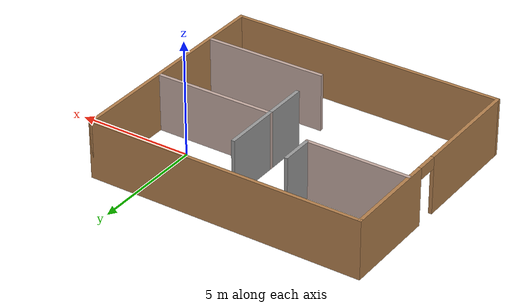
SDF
<?xml version='1.0'?>
<sdf version='1.6'>
  <model name='building'>
    <pose frame=''>-3.92953 -1.68851 0 0 -0 0</pose>
    <link name='Wall_0'>
      <collision name='Wall_0_Collision'>
        <geometry>
          <box>
            <size>12 0.15 2.5</size>
          </box>
        </geometry>
        <pose frame=''>0 0 1.25 0 -0 0</pose>
      </collision>
      <visual name='Wall_0_Visual'>
        <pose frame=''>0 0 1.25 0 -0 0</pose>
        <geometry>
          <box>
            <size>12 0.15 2.5</size>
          </box>
        </geometry>
        <material>
          <script>
            <uri>file://media/materials/scripts/gazebo.material</uri>
            <name>Gazebo/Wood</name>
          </script>
          <ambient>1 1 1 1</ambient>
        </material>
        <meta>
          <layer>0</layer>
        </meta>
      </visual>
      <pose frame=''>0 4.925 0 0 -0 0</pose>
    </link>
    <link name='Wall_1'>
      <collision name='Wall_1_Collision'>
        <geometry>
          <box>
            <size>10 0.15 2.5</size>
          </box>
        </geometry>
        <pose frame=''>0 0 1.25 0 -0 0</pose>
      </collision>
      <visual name='Wall_1_Visual'>
        <pose frame=''>0 0 1.25 0 -0 0</pose>
        <geometry>
          <box>
            <size>10 0.15 2.5</size>
          </box>
        </geometry>
        <material>
          <script>
            <uri>file://media/materials/scripts/gazebo.material</uri>
            <name>Gazebo/Wood</name>
          </script>
          <ambient>1 1 1 1</ambient>
        </material>
        <meta>
          <layer>0</layer>
        </meta>
      </visual>
      <pose frame=''>5.925 0 0 0 -0 -1.5708</pose>
    </link>
    <link name='Wall_12'>
      <collision name='Wall_12_Collision'>
        <geometry>
          <box>
            <size>5.25 0.15 2.5</size>
          </box>
        </geometry>
        <pose frame=''>0 0 1.25 0 -0 0</pose>
      </collision>
      <visual name='Wall_12_Visual'>
        <pose frame=''>0 0 1.25 0 -0 0</pose>
        <geometry>
          <box>
            <size>5.25 0.15 2.5</size>
          </box>
        </geometry>
        <material>
          <script>
            <uri>file://media/materials/scripts/gazebo.material</uri>
            <name>Gazebo/Grey</name>
          </script>
          <ambient>0.760784 0.662745 0.627451 1</ambient>
        </material>
        <meta>
          <layer>0</layer>
        </meta>
      </visual>
      <pose frame=''>3.22225 -2.71523 0 0 -0 0.007888</pose>
    </link>
    <link name='Wall_14'>
      <collision name='Wall_14_Collision'>
        <geometry>
          <box>
            <size>5.25 0.15 2.5</size>
          </box>
        </geometry>
        <pose frame=''>0 0 1.25 0 -0 0</pose>
      </collision>
      <visual name='Wall_14_Visual'>
        <pose frame=''>0 0 1.25 0 -0 0</pose>
        <geometry>
          <box>
            <size>5.25 0.15 2.5</size>
          </box>
        </geometry>
        <material>
          <script>
            <uri>file://media/materials/scripts/gazebo.material</uri>
            <name>Gazebo/Grey</name>
          </script>
          <ambient>0.760784 0.662745 0.627451 1</ambient>
        </material>
        <meta>
          <layer>0</layer>
        </meta>
      </visual>
      <pose frame=''>3.28259 0.70115 0 0 -0 0</pose>
    </link>
    <link name='Wall_16'>
      <collision name='Wall_16_Collision'>
        <geometry>
          <box>
            <size>2.5 0.15 2.5</size>
          </box>
        </geometry>
        <pose frame=''>0 0 1.25 0 -0 0</pose>
      </collision>
      <visual name='Wall_16_Visual'>
        <pose frame=''>0 0 1.25 0 -0 0</pose>
        <geometry>
          <box>
            <size>2.5 0.15 2.5</size>
          </box>
        </geometry>
        <material>
          <script>
            <uri>file://media/materials/scripts/gazebo.material</uri>
            <name>Gazebo/Grey</name>
          </script>
          <ambient>1 1 1 1</ambient>
        </material>
        <meta>
          <layer>0</layer>
        </meta>
      </visual>
      <pose frame=''>0.732593 1.87615 0 0 -0 1.5708</pose>
    </link>
    <link name='Wall_18'>
      <collision name='Wall_18_Collision'>
        <geometry>
          <box>
            <size>2 0.15 2.5</size>
          </box>
        </geometry>
        <pose frame=''>0 0 1.25 0 -0 0</pose>
      </collision>
      <visual name='Wall_18_Visual'>
        <pose frame=''>0 0 1.25 0 -0 0</pose>
        <geometry>
          <box>
            <size>2 0.15 2.5</size>
          </box>
        </geometry>
        <material>
          <script>
            <uri>file://media/materials/scripts/gazebo.material</uri>
            <name>Gazebo/Grey</name>
          </script>
          <ambient>1 1 1 1</ambient>
        </material>
        <meta>
          <layer>0</layer>
        </meta>
      </visual>
      <pose frame=''>0.732593 -0.22385 0 0 -0 -1.5708</pose>
    </link>
    <link name='Wall_2'>
      <collision name='Wall_2_Collision'>
        <geometry>
          <box>
            <size>12 0.15 2.5</size>
          </box>
        </geometry>
        <pose frame=''>0 0 1.25 0 -0 0</pose>
      </collision>
      <visual name='Wall_2_Visual'>
        <pose frame=''>0 0 1.25 0 -0 0</pose>
        <geometry>
          <box>
            <size>12 0.15 2.5</size>
          </box>
        </geometry>
        <material>
          <script>
            <uri>file://media/materials/scripts/gazebo.material</uri>
            <name>Gazebo/Wood</name>
          </script>
          <ambient>1 1 1 1</ambient>
        </material>
        <meta>
          <layer>0</layer>
        </meta>
      </visual>
      <pose frame=''>0 -4.925 0 0 -0 3.14159</pose>
    </link>
    <link name='Wall_20'>
      <collision name='Wall_20_Collision'>
        <geometry>
          <box>
            <size>1.5 0.15 2.5</size>
          </box>
        </geometry>
        <pose frame=''>0 0 1.25 0 -0 0</pose>
      </collision>
      <visual name='Wall_20_Visual'>
        <pose frame=''>0 0 1.25 0 -0 0</pose>
        <geometry>
          <box>
            <size>1.5 0.15 2.5</size>
          </box>
        </geometry>
        <material>
          <script>
            <uri>file://media/materials/scripts/gazebo.material</uri>
            <name>Gazebo/Grey</name>
          </script>
          <ambient>1 1 1 1</ambient>
        </material>
        <meta>
          <layer>0</layer>
        </meta>
      </visual>
      <pose frame=''>-1.54024 2.27011 0 0 -0 1.5708</pose>
    </link>
    <link name='Wall_3'>
      <pose frame=''>-5.925 0 0 0 -0 1.5708</pose>
      <visual name='Wall_3_Visual_0'>
        <pose frame=''>-2.51807 0 1.25 0 -0 0</pose>
        <geometry>
          <box>
            <size>4.96387 0.15 2.5</size>
          </box>
        </geometry>
        <material>
          <script>
            <uri>file://media/materials/scripts/gazebo.material</uri>
            <name>Gazebo/Wood</name>
          </script>
          <ambient>1 1 1 1</ambient>
        </material>
        <meta>
          <layer>0</layer>
        </meta>
      </visual>
      <collision name='Wall_3_Collision_0'>
        <geometry>
          <box>
            <size>4.96387 0.15 2.5</size>
          </box>
        </geometry>
        <pose frame=''>-2.51807 0 1.25 0 -0 0</pose>
      </collision>
      <visual name='Wall_3_Visual_1'>
        <pose frame=''>2.93193 0 1.25 0 -0 0</pose>
        <geometry>
          <box>
            <size>4.13613 0.15 2.5</size>
          </box>
        </geometry>
        <material>
          <script>
            <uri>file://media/materials/scripts/gazebo.material</uri>
            <name>Gazebo/Wood</name>
          </script>
          <ambient>1 1 1 1</ambient>
        </material>
        <meta>
          <layer>0</layer>
        </meta>
      </visual>
      <collision name='Wall_3_Collision_1'>
        <geometry>
          <box>
            <size>4.13613 0.15 2.5</size>
          </box>
        </geometry>
        <pose frame=''>2.93193 0 1.25 0 -0 0</pose>
      </collision>
      <visual name='Wall_3_Visual_2'>
        <pose frame=''>0.413866 0 2.25 0 -0 0</pose>
        <geometry>
          <box>
            <size>0.9 0.15 0.5</size>
          </box>
        </geometry>
        <material>
          <script>
            <uri>file://media/materials/scripts/gazebo.material</uri>
            <name>Gazebo/Wood</name>
          </script>
          <ambient>1 1 1 1</ambient>
        </material>
        <meta>
          <layer>0</layer>
        </meta>
      </visual>
      <collision name='Wall_3_Collision_2'>
        <geometry>
          <box>
            <size>0.9 0.15 0.5</size>
          </box>
        </geometry>
        <pose frame=''>0.413866 0 2.25 0 -0 0</pose>
      </collision>
    </link>
    <link name='Wall_9'>
      <collision name='Wall_9_Collision'>
        <geometry>
          <box>
            <size>4.5 0.15 2.5</size>
          </box>
        </geometry>
        <pose frame=''>0 0 1.25 0 -0 0</pose>
      </collision>
      <visual name='Wall_9_Visual'>
        <pose frame=''>0 0 1.25 0 -0 0</pose>
        <geometry>
          <box>
            <size>4.5 0.15 2.5</size>
          </box>
        </geometry>
        <material>
          <script>
            <uri>file://media/materials/scripts/gazebo.material</uri>
            <name>Gazebo/Grey</name>
          </script>
          <ambient>0.760784 0.662745 0.627451 1</ambient>
        </material>
        <meta>
          <layer>0</layer>
        </meta>
      </visual>
      <pose frame=''>-3.71524 1.59511 0 0 -0 3.14159</pose>
    </link>
    <static>1</static>
  </model>
</sdf>
